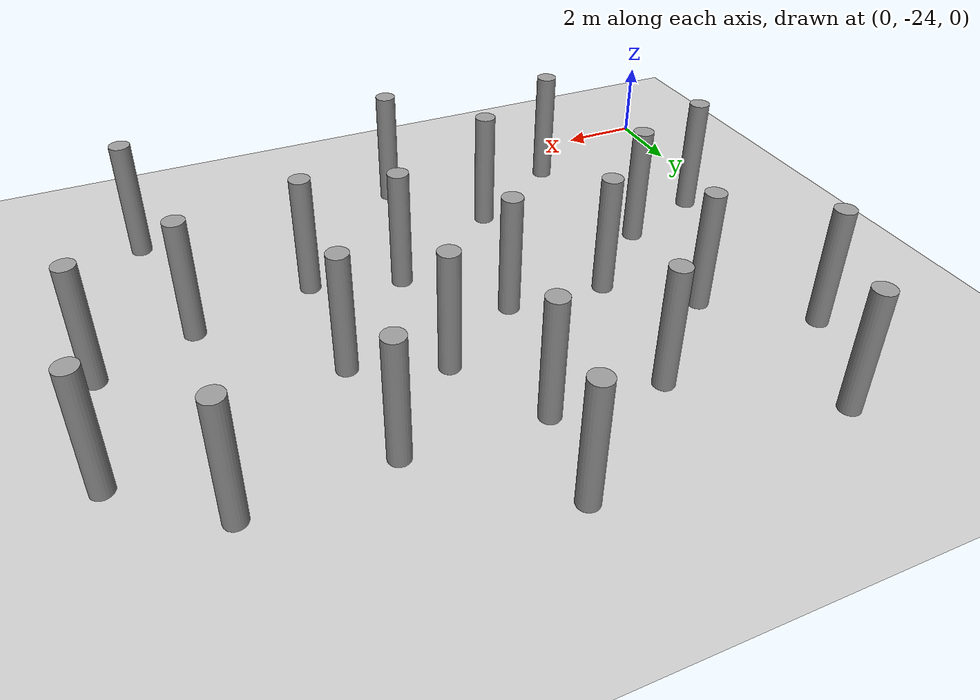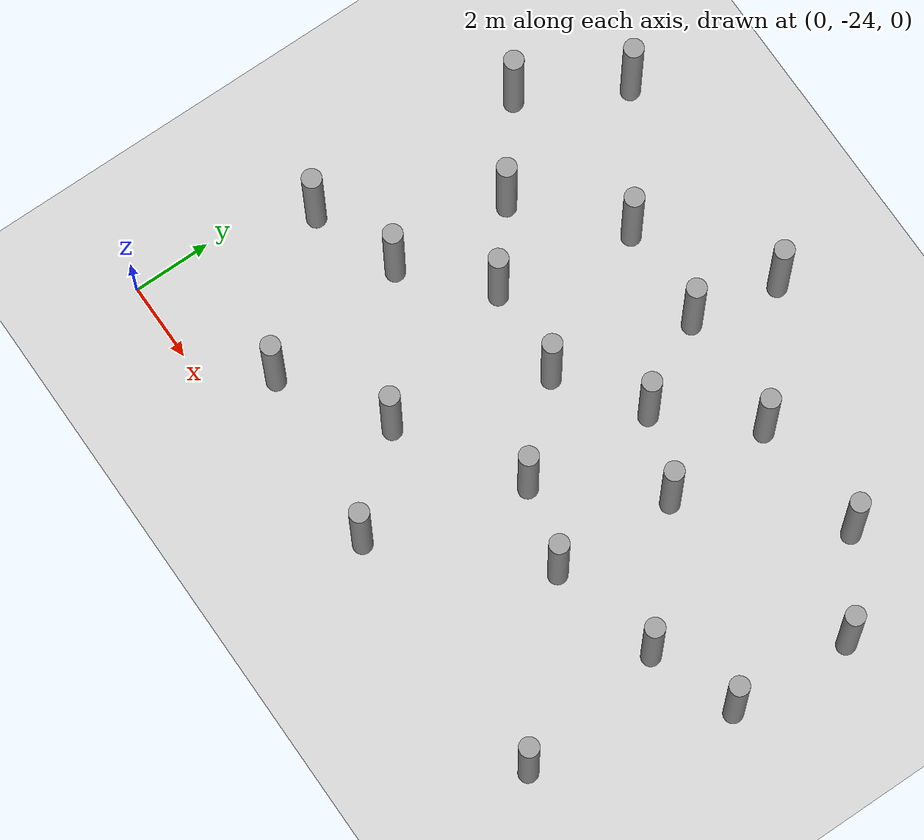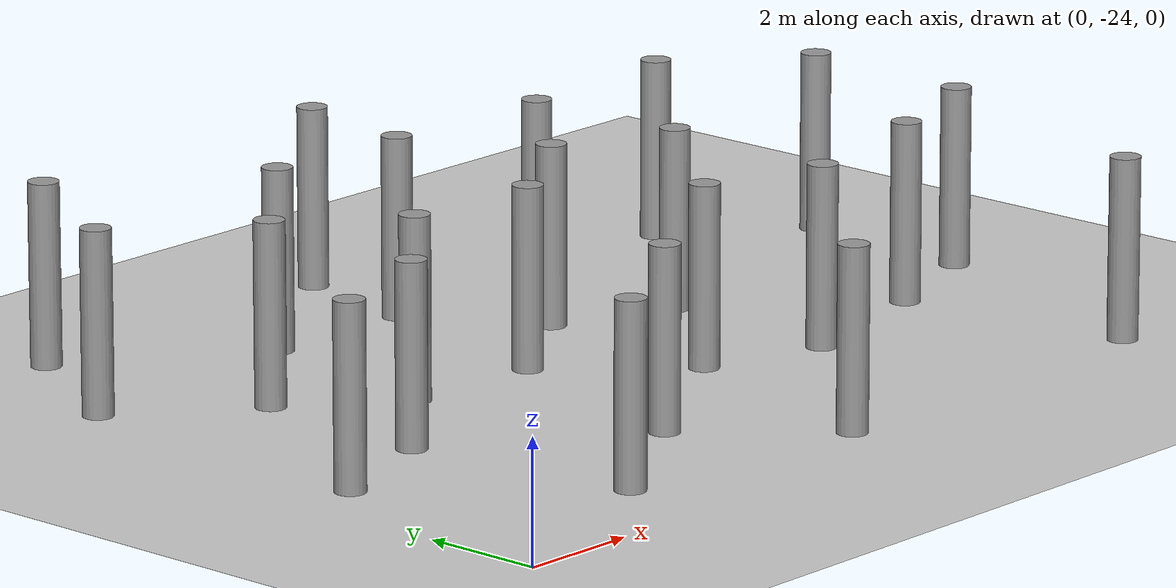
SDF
<sdf version="1.6">
 <world name="default">
  <model name="ground_plane">
   <static>1</static>
   <link name="link">
    <collision name="collision">
     <geometry><plane><normal>0 0 1</normal><size>100 100</size></plane></geometry>
     <surface><friction><ode><mu>100</mu><mu2>50</mu2></ode></friction></surface>
    </collision>
    <visual name="visual">
     <cast_shadows>0</cast_shadows>
     <geometry><plane><normal>0 0 1</normal><size>100 100</size></plane></geometry>
     <material>
      <script><uri>file://media/materials/scripts/gazebo.material</uri><name>Gazebo/Grey</name></script>
     </material>
    </visual>
   </link>
  </model>
  <model name="LjjForest">
   <link name="link_0_clone_20">
    <inertial>
     <mass>1</mass>
     <inertia><ixx>0.145833</ixx><ixy>0</ixy><ixz>0</ixz><iyy>0.145833</iyy><iyz>0</iyz><izz>0.125</izz></inertia>
    </inertial>
    <pose>1.97365 -10.0303 0 0 -0 0</pose>
    <visual name="visual">
     <geometry><cylinder><radius>0.25</radius><length>3</length></cylinder></geometry>
     <material>
      <lighting>1</lighting>
      <script><uri>file://media/materials/scripts/gazebo.material</uri><name>Gazebo/Grey</name></script>
      <shader type="vertex"><normal_map>__default__</normal_map></shader>
      <ambient>0.3 0.3 0.3 1</ambient>
      <diffuse>0.7 0.7 0.7 1</diffuse>
      <specular>0.01 0.01 0.01 1</specular>
      <emissive>0 0 0 1</emissive>
     </material>
    </visual>
    <collision name="collision">
     <geometry><cylinder><radius>0.25</radius><length>3</length></cylinder></geometry>
     <surface>
      <friction>
       <ode><mu>1</mu><mu2>1</mu2><fdir1>0 0 0</fdir1><slip1>0</slip1><slip2>0</slip2></ode>
       <torsional>
        <coefficient>1</coefficient>
        <patch_radius>0</patch_radius>
        <surface_radius>0</surface_radius>
        <use_patch_radius>1</use_patch_radius>
        <ode><slip>0</slip></ode>
       </torsional>
      </friction>
      <bounce><restitution_coefficient>0</restitution_coefficient><threshold>1e+06</threshold></bounce>
      <contact>
       <collide_without_contact>0</collide_without_contact>
       <collide_without_contact_bitmask>1</collide_without_contact_bitmask>
       <collide_bitmask>1</collide_bitmask>
       <ode>
        <soft_cfm>0</soft_cfm>
        <soft_erp>0.2</soft_erp>
        <kp>1e+13</kp>
        <kd>1</kd>
        <max_vel>0.01</max_vel>
        <min_depth>0</min_depth>
       </ode>
       <bullet>
        <split_impulse>1</split_impulse>
        <split_impulse_penetration_threshold>-0.01</split_impulse_penetration_threshold>
        <soft_cfm>0</soft_cfm>
        <soft_erp>0.2</soft_erp>
        <kp>1e+13</kp>
        <kd>1</kd>
       </bullet>
      </contact>
     </surface>
    </collision>
   </link>
   <link name="link_0_clone_21">
    <inertial>
     <mass>1</mass>
     <inertia><ixx>0.145833</ixx><ixy>0</ixy><ixz>0</ixz><iyy>0.145833</iyy><iyz>0</iyz><izz>0.125</izz></inertia>
    </inertial>
    <pose>-4.11405 -10.0375 0 0 -0 0</pose>
    <visual name="visual">
     <geometry><cylinder><radius>0.25</radius><length>3</length></cylinder></geometry>
     <material>
      <lighting>1</lighting>
      <script><uri>file://media/materials/scripts/gazebo.material</uri><name>Gazebo/Grey</name></script>
      <shader type="vertex"><normal_map>__default__</normal_map></shader>
      <ambient>0.3 0.3 0.3 1</ambient>
      <diffuse>0.7 0.7 0.7 1</diffuse>
      <specular>0.01 0.01 0.01 1</specular>
      <emissive>0 0 0 1</emissive>
     </material>
    </visual>
    <collision name="collision">
     <geometry><cylinder><radius>0.25</radius><length>3</length></cylinder></geometry>
     <surface>
      <friction>
       <ode><mu>1</mu><mu2>1</mu2><fdir1>0 0 0</fdir1><slip1>0</slip1><slip2>0</slip2></ode>
       <torsional>
        <coefficient>1</coefficient>
        <patch_radius>0</patch_radius>
        <surface_radius>0</surface_radius>
        <use_patch_radius>1</use_patch_radius>
        <ode><slip>0</slip></ode>
       </torsional>
      </friction>
      <bounce><restitution_coefficient>0</restitution_coefficient><threshold>1e+06</threshold></bounce>
      <contact>
       <collide_without_contact>0</collide_without_contact>
       <collide_without_contact_bitmask>1</collide_without_contact_bitmask>
       <collide_bitmask>1</collide_bitmask>
       <ode>
        <soft_cfm>0</soft_cfm>
        <soft_erp>0.2</soft_erp>
        <kp>1e+13</kp>
        <kd>1</kd>
        <max_vel>0.01</max_vel>
        <min_depth>0</min_depth>
       </ode>
       <bullet>
        <split_impulse>1</split_impulse>
        <split_impulse_penetration_threshold>-0.01</split_impulse_penetration_threshold>
        <soft_cfm>0</soft_cfm>
        <soft_erp>0.2</soft_erp>
        <kp>1e+13</kp>
        <kd>1</kd>
       </bullet>
      </contact>
     </surface>
    </collision>
   </link>
   <static>0</static>
   <pose>6.66629 -1.33639 1.49999 0 -0 0.002431</pose>
  </model>
  <model name="LjjForest_0">
   <link name="link_0_clone">
    <inertial>
     <mass>1</mass>
     <inertia><ixx>0.145833</ixx><ixy>0</ixy><ixz>0</ixz><iyy>0.145833</iyy><iyz>0</iyz><izz>0.125</izz></inertia>
    </inertial>
    <pose>-2.83119 0.981911 0 0 -0 0</pose>
    <visual name="visual">
     <geometry><cylinder><radius>0.25</radius><length>3</length></cylinder></geometry>
     <material>
      <lighting>1</lighting>
      <script><uri>file://media/materials/scripts/gazebo.material</uri><name>Gazebo/Grey</name></script>
      <shader type="vertex"><normal_map>__default__</normal_map></shader>
      <ambient>0.3 0.3 0.3 1</ambient>
      <diffuse>0.7 0.7 0.7 1</diffuse>
      <specular>0.01 0.01 0.01 1</specular>
      <emissive>0 0 0 1</emissive>
     </material>
    </visual>
    <collision name="collision">
     <geometry><cylinder><radius>0.25</radius><length>3</length></cylinder></geometry>
     <surface>
      <friction>
       <ode><mu>1</mu><mu2>1</mu2><fdir1>0 0 0</fdir1><slip1>0</slip1><slip2>0</slip2></ode>
       <torsional>
        <coefficient>1</coefficient>
        <patch_radius>0</patch_radius>
        <surface_radius>0</surface_radius>
        <use_patch_radius>1</use_patch_radius>
        <ode><slip>0</slip></ode>
       </torsional>
      </friction>
      <bounce><restitution_coefficient>0</restitution_coefficient><threshold>1e+06</threshold></bounce>
      <contact>
       <collide_without_contact>0</collide_without_contact>
       <collide_without_contact_bitmask>1</collide_without_contact_bitmask>
       <collide_bitmask>1</collide_bitmask>
       <ode>
        <soft_cfm>0</soft_cfm>
        <soft_erp>0.2</soft_erp>
        <kp>1e+13</kp>
        <kd>1</kd>
        <max_vel>0.01</max_vel>
        <min_depth>0</min_depth>
       </ode>
       <bullet>
        <split_impulse>1</split_impulse>
        <split_impulse_penetration_threshold>-0.01</split_impulse_penetration_threshold>
        <soft_cfm>0</soft_cfm>
        <soft_erp>0.2</soft_erp>
        <kp>1e+13</kp>
        <kd>1</kd>
       </bullet>
      </contact>
     </surface>
    </collision>
   </link>
   <link name="link_0_clone_0">
    <inertial>
     <mass>1</mass>
     <inertia><ixx>0.145833</ixx><ixy>0</ixy><ixz>0</ixz><iyy>0.145833</iyy><iyz>0</iyz><izz>0.125</izz></inertia>
    </inertial>
    <pose>-0.25253 2.5682 0 0 -0 0</pose>
    <visual name="visual">
     <geometry><cylinder><radius>0.25</radius><length>3</length></cylinder></geometry>
     <material>
      <lighting>1</lighting>
      <script><uri>file://media/materials/scripts/gazebo.material</uri><name>Gazebo/Grey</name></script>
      <shader type="vertex"><normal_map>__default__</normal_map></shader>
      <ambient>0.3 0.3 0.3 1</ambient>
      <diffuse>0.7 0.7 0.7 1</diffuse>
      <specular>0.01 0.01 0.01 1</specular>
      <emissive>0 0 0 1</emissive>
     </material>
    </visual>
    <collision name="collision">
     <geometry><cylinder><radius>0.25</radius><length>3</length></cylinder></geometry>
     <surface>
      <friction>
       <ode><mu>1</mu><mu2>1</mu2><fdir1>0 0 0</fdir1><slip1>0</slip1><slip2>0</slip2></ode>
       <torsional>
        <coefficient>1</coefficient>
        <patch_radius>0</patch_radius>
        <surface_radius>0</surface_radius>
        <use_patch_radius>1</use_patch_radius>
        <ode><slip>0</slip></ode>
       </torsional>
      </friction>
      <bounce><restitution_coefficient>0</restitution_coefficient><threshold>1e+06</threshold></bounce>
      <contact>
       <collide_without_contact>0</collide_without_contact>
       <collide_without_contact_bitmask>1</collide_without_contact_bitmask>
       <collide_bitmask>1</collide_bitmask>
       <ode>
        <soft_cfm>0</soft_cfm>
        <soft_erp>0.2</soft_erp>
        <kp>1e+13</kp>
        <kd>1</kd>
        <max_vel>0.01</max_vel>
        <min_depth>0</min_depth>
       </ode>
       <bullet>
        <split_impulse>1</split_impulse>
        <split_impulse_penetration_threshold>-0.01</split_impulse_penetration_threshold>
        <soft_cfm>0</soft_cfm>
        <soft_erp>0.2</soft_erp>
        <kp>1e+13</kp>
        <kd>1</kd>
       </bullet>
      </contact>
     </surface>
    </collision>
   </link>
   <link name="link_0_clone_2">
    <inertial>
     <mass>1</mass>
     <inertia><ixx>0.145833</ixx><ixy>0</ixy><ixz>0</ixz><iyy>0.145833</iyy><iyz>0</iyz><izz>0.125</izz></inertia>
    </inertial>
    <pose>1.64727 0.418921 0 0 -0 0</pose>
    <visual name="visual">
     <geometry><cylinder><radius>0.25</radius><length>3</length></cylinder></geometry>
     <material>
      <lighting>1</lighting>
      <script><uri>file://media/materials/scripts/gazebo.material</uri><name>Gazebo/Grey</name></script>
      <shader type="vertex"><normal_map>__default__</normal_map></shader>
      <ambient>0.3 0.3 0.3 1</ambient>
      <diffuse>0.7 0.7 0.7 1</diffuse>
      <specular>0.01 0.01 0.01 1</specular>
      <emissive>0 0 0 1</emissive>
     </material>
    </visual>
    <collision name="collision">
     <geometry><cylinder><radius>0.25</radius><length>3</length></cylinder></geometry>
     <surface>
      <friction>
       <ode><mu>1</mu><mu2>1</mu2><fdir1>0 0 0</fdir1><slip1>0</slip1><slip2>0</slip2></ode>
       <torsional>
        <coefficient>1</coefficient>
        <patch_radius>0</patch_radius>
        <surface_radius>0</surface_radius>
        <use_patch_radius>1</use_patch_radius>
        <ode><slip>0</slip></ode>
       </torsional>
      </friction>
      <bounce><restitution_coefficient>0</restitution_coefficient><threshold>1e+06</threshold></bounce>
      <contact>
       <collide_without_contact>0</collide_without_contact>
       <collide_without_contact_bitmask>1</collide_without_contact_bitmask>
       <collide_bitmask>1</collide_bitmask>
       <ode>
        <soft_cfm>0</soft_cfm>
        <soft_erp>0.2</soft_erp>
        <kp>1e+13</kp>
        <kd>1</kd>
        <max_vel>0.01</max_vel>
        <min_depth>0</min_depth>
       </ode>
       <bullet>
        <split_impulse>1</split_impulse>
        <split_impulse_penetration_threshold>-0.01</split_impulse_penetration_threshold>
        <soft_cfm>0</soft_cfm>
        <soft_erp>0.2</soft_erp>
        <kp>1e+13</kp>
        <kd>1</kd>
       </bullet>
      </contact>
     </surface>
    </collision>
   </link>
   <link name="link_0_clone_23">
    <inertial>
     <mass>1</mass>
     <inertia><ixx>0.145833</ixx><ixy>0</ixy><ixz>0</ixz><iyy>0.145833</iyy><iyz>0</iyz><izz>0.125</izz></inertia>
    </inertial>
    <pose>-5.66615 4.05911 0 0 -0 0</pose>
    <visual name="visual">
     <geometry><cylinder><radius>0.25</radius><length>3</length></cylinder></geometry>
     <material>
      <lighting>1</lighting>
      <script><uri>file://media/materials/scripts/gazebo.material</uri><name>Gazebo/Grey</name></script>
      <shader type="vertex"><normal_map>__default__</normal_map></shader>
      <ambient>0.3 0.3 0.3 1</ambient>
      <diffuse>0.7 0.7 0.7 1</diffuse>
      <specular>0.01 0.01 0.01 1</specular>
      <emissive>0 0 0 1</emissive>
     </material>
    </visual>
    <collision name="collision">
     <geometry><cylinder><radius>0.25</radius><length>3</length></cylinder></geometry>
     <surface>
      <friction>
       <ode><mu>1</mu><mu2>1</mu2><fdir1>0 0 0</fdir1><slip1>0</slip1><slip2>0</slip2></ode>
       <torsional>
        <coefficient>1</coefficient>
        <patch_radius>0</patch_radius>
        <surface_radius>0</surface_radius>
        <use_patch_radius>1</use_patch_radius>
        <ode><slip>0</slip></ode>
       </torsional>
      </friction>
      <bounce><restitution_coefficient>0</restitution_coefficient><threshold>1e+06</threshold></bounce>
      <contact>
       <collide_without_contact>0</collide_without_contact>
       <collide_without_contact_bitmask>1</collide_without_contact_bitmask>
       <collide_bitmask>1</collide_bitmask>
       <ode>
        <soft_cfm>0</soft_cfm>
        <soft_erp>0.2</soft_erp>
        <kp>1e+13</kp>
        <kd>1</kd>
        <max_vel>0.01</max_vel>
        <min_depth>0</min_depth>
       </ode>
       <bullet>
        <split_impulse>1</split_impulse>
        <split_impulse_penetration_threshold>-0.01</split_impulse_penetration_threshold>
        <soft_cfm>0</soft_cfm>
        <soft_erp>0.2</soft_erp>
        <kp>1e+13</kp>
        <kd>1</kd>
       </bullet>
      </contact>
     </surface>
    </collision>
   </link>
   <link name="link_0_clone_24">
    <inertial>
     <mass>1</mass>
     <inertia><ixx>0.145833</ixx><ixy>0</ixy><ixz>0</ixz><iyy>0.145833</iyy><iyz>0</iyz><izz>0.125</izz></inertia>
    </inertial>
    <pose>2.92874 7.75131 0 0 -0 0</pose>
    <visual name="visual">
     <geometry><cylinder><radius>0.25</radius><length>3</length></cylinder></geometry>
     <material>
      <lighting>1</lighting>
      <script><uri>file://media/materials/scripts/gazebo.material</uri><name>Gazebo/Grey</name></script>
      <shader type="vertex"><normal_map>__default__</normal_map></shader>
      <ambient>0.3 0.3 0.3 1</ambient>
      <diffuse>0.7 0.7 0.7 1</diffuse>
      <specular>0.01 0.01 0.01 1</specular>
      <emissive>0 0 0 1</emissive>
     </material>
    </visual>
    <collision name="collision">
     <geometry><cylinder><radius>0.25</radius><length>3</length></cylinder></geometry>
     <surface>
      <friction>
       <ode><mu>1</mu><mu2>1</mu2><fdir1>0 0 0</fdir1><slip1>0</slip1><slip2>0</slip2></ode>
       <torsional>
        <coefficient>1</coefficient>
        <patch_radius>0</patch_radius>
        <surface_radius>0</surface_radius>
        <use_patch_radius>1</use_patch_radius>
        <ode><slip>0</slip></ode>
       </torsional>
      </friction>
      <bounce><restitution_coefficient>0</restitution_coefficient><threshold>1e+06</threshold></bounce>
      <contact>
       <collide_without_contact>0</collide_without_contact>
       <collide_without_contact_bitmask>1</collide_without_contact_bitmask>
       <collide_bitmask>1</collide_bitmask>
       <ode>
        <soft_cfm>0</soft_cfm>
        <soft_erp>0.2</soft_erp>
        <kp>1e+13</kp>
        <kd>1</kd>
        <max_vel>0.01</max_vel>
        <min_depth>0</min_depth>
       </ode>
       <bullet>
        <split_impulse>1</split_impulse>
        <split_impulse_penetration_threshold>-0.01</split_impulse_penetration_threshold>
        <soft_cfm>0</soft_cfm>
        <soft_erp>0.2</soft_erp>
        <kp>1e+13</kp>
        <kd>1</kd>
       </bullet>
      </contact>
     </surface>
    </collision>
   </link>
   <link name="link_0_clone_25">
    <inertial>
     <mass>1</mass>
     <inertia><ixx>0.145833</ixx><ixy>0</ixy><ixz>0</ixz><iyy>0.145833</iyy><iyz>0</iyz><izz>0.125</izz></inertia>
    </inertial>
    <pose>4.82479 9.76951 0 0 -0 0</pose>
    <visual name="visual">
     <geometry><cylinder><radius>0.25</radius><length>3</length></cylinder></geometry>
     <material>
      <lighting>1</lighting>
      <script><uri>file://media/materials/scripts/gazebo.material</uri><name>Gazebo/Grey</name></script>
      <shader type="vertex"><normal_map>__default__</normal_map></shader>
      <ambient>0.3 0.3 0.3 1</ambient>
      <diffuse>0.7 0.7 0.7 1</diffuse>
      <specular>0.01 0.01 0.01 1</specular>
      <emissive>0 0 0 1</emissive>
     </material>
    </visual>
    <collision name="collision">
     <geometry><cylinder><radius>0.25</radius><length>3</length></cylinder></geometry>
     <surface>
      <friction>
       <ode><mu>1</mu><mu2>1</mu2><fdir1>0 0 0</fdir1><slip1>0</slip1><slip2>0</slip2></ode>
       <torsional>
        <coefficient>1</coefficient>
        <patch_radius>0</patch_radius>
        <surface_radius>0</surface_radius>
        <use_patch_radius>1</use_patch_radius>
        <ode><slip>0</slip></ode>
       </torsional>
      </friction>
      <bounce><restitution_coefficient>0</restitution_coefficient><threshold>1e+06</threshold></bounce>
      <contact>
       <collide_without_contact>0</collide_without_contact>
       <collide_without_contact_bitmask>1</collide_without_contact_bitmask>
       <collide_bitmask>1</collide_bitmask>
       <ode>
        <soft_cfm>0</soft_cfm>
        <soft_erp>0.2</soft_erp>
        <kp>1e+13</kp>
        <kd>1</kd>
        <max_vel>0.01</max_vel>
        <min_depth>0</min_depth>
       </ode>
       <bullet>
        <split_impulse>1</split_impulse>
        <split_impulse_penetration_threshold>-0.01</split_impulse_penetration_threshold>
        <soft_cfm>0</soft_cfm>
        <soft_erp>0.2</soft_erp>
        <kp>1e+13</kp>
        <kd>1</kd>
       </bullet>
      </contact>
     </surface>
    </collision>
   </link>
   <link name="link_0_clone_26">
    <inertial>
     <mass>1</mass>
     <inertia><ixx>0.145833</ixx><ixy>0</ixy><ixz>0</ixz><iyy>0.145833</iyy><iyz>0</iyz><izz>0.125</izz></inertia>
    </inertial>
    <pose>1.66794 9.91533 0 0 -0 0</pose>
    <visual name="visual">
     <geometry><cylinder><radius>0.25</radius><length>3</length></cylinder></geometry>
     <material>
      <lighting>1</lighting>
      <script><uri>file://media/materials/scripts/gazebo.material</uri><name>Gazebo/Grey</name></script>
      <shader type="vertex"><normal_map>__default__</normal_map></shader>
      <ambient>0.3 0.3 0.3 1</ambient>
      <diffuse>0.7 0.7 0.7 1</diffuse>
      <specular>0.01 0.01 0.01 1</specular>
      <emissive>0 0 0 1</emissive>
     </material>
    </visual>
    <collision name="collision">
     <geometry><cylinder><radius>0.25</radius><length>3</length></cylinder></geometry>
     <surface>
      <friction>
       <ode><mu>1</mu><mu2>1</mu2><fdir1>0 0 0</fdir1><slip1>0</slip1><slip2>0</slip2></ode>
       <torsional>
        <coefficient>1</coefficient>
        <patch_radius>0</patch_radius>
        <surface_radius>0</surface_radius>
        <use_patch_radius>1</use_patch_radius>
        <ode><slip>0</slip></ode>
       </torsional>
      </friction>
      <bounce><restitution_coefficient>0</restitution_coefficient><threshold>1e+06</threshold></bounce>
      <contact>
       <collide_without_contact>0</collide_without_contact>
       <collide_without_contact_bitmask>1</collide_without_contact_bitmask>
       <collide_bitmask>1</collide_bitmask>
       <ode>
        <soft_cfm>0</soft_cfm>
        <soft_erp>0.2</soft_erp>
        <kp>1e+13</kp>
        <kd>1</kd>
        <max_vel>0.01</max_vel>
        <min_depth>0</min_depth>
       </ode>
       <bullet>
        <split_impulse>1</split_impulse>
        <split_impulse_penetration_threshold>-0.01</split_impulse_penetration_threshold>
        <soft_cfm>0</soft_cfm>
        <soft_erp>0.2</soft_erp>
        <kp>1e+13</kp>
        <kd>1</kd>
       </bullet>
      </contact>
     </surface>
    </collision>
   </link>
   <link name="link_0_clone_27">
    <inertial>
     <mass>1</mass>
     <inertia><ixx>0.145833</ixx><ixy>0</ixy><ixz>0</ixz><iyy>0.145833</iyy><iyz>0</iyz><izz>0.125</izz></inertia>
    </inertial>
    <pose>-0.975859 10.0087 0 0 -0 0</pose>
    <visual name="visual">
     <geometry><cylinder><radius>0.25</radius><length>3</length></cylinder></geometry>
     <material>
      <lighting>1</lighting>
      <script><uri>file://media/materials/scripts/gazebo.material</uri><name>Gazebo/Grey</name></script>
      <shader type="vertex"><normal_map>__default__</normal_map></shader>
      <ambient>0.3 0.3 0.3 1</ambient>
      <diffuse>0.7 0.7 0.7 1</diffuse>
      <specular>0.01 0.01 0.01 1</specular>
      <emissive>0 0 0 1</emissive>
     </material>
    </visual>
    <collision name="collision">
     <geometry><cylinder><radius>0.25</radius><length>3</length></cylinder></geometry>
     <surface>
      <friction>
       <ode><mu>1</mu><mu2>1</mu2><fdir1>0 0 0</fdir1><slip1>0</slip1><slip2>0</slip2></ode>
       <torsional>
        <coefficient>1</coefficient>
        <patch_radius>0</patch_radius>
        <surface_radius>0</surface_radius>
        <use_patch_radius>1</use_patch_radius>
        <ode><slip>0</slip></ode>
       </torsional>
      </friction>
      <bounce><restitution_coefficient>0</restitution_coefficient><threshold>1e+06</threshold></bounce>
      <contact>
       <collide_without_contact>0</collide_without_contact>
       <collide_without_contact_bitmask>1</collide_without_contact_bitmask>
       <collide_bitmask>1</collide_bitmask>
       <ode>
        <soft_cfm>0</soft_cfm>
        <soft_erp>0.2</soft_erp>
        <kp>1e+13</kp>
        <kd>1</kd>
        <max_vel>0.01</max_vel>
        <min_depth>0</min_depth>
       </ode>
       <bullet>
        <split_impulse>1</split_impulse>
        <split_impulse_penetration_threshold>-0.01</split_impulse_penetration_threshold>
        <soft_cfm>0</soft_cfm>
        <soft_erp>0.2</soft_erp>
        <kp>1e+13</kp>
        <kd>1</kd>
       </bullet>
      </contact>
     </surface>
    </collision>
   </link>
   <link name="link_0_clone_28">
    <inertial>
     <mass>1</mass>
     <inertia><ixx>0.145833</ixx><ixy>0</ixy><ixz>0</ixz><iyy>0.145833</iyy><iyz>0</iyz><izz>0.125</izz></inertia>
    </inertial>
    <pose>-3.28832 7.97521 0 0 -0 0</pose>
    <visual name="visual">
     <geometry><cylinder><radius>0.25</radius><length>3</length></cylinder></geometry>
     <material>
      <lighting>1</lighting>
      <script><uri>file://media/materials/scripts/gazebo.material</uri><name>Gazebo/Grey</name></script>
      <shader type="vertex"><normal_map>__default__</normal_map></shader>
      <ambient>0.3 0.3 0.3 1</ambient>
      <diffuse>0.7 0.7 0.7 1</diffuse>
      <specular>0.01 0.01 0.01 1</specular>
      <emissive>0 0 0 1</emissive>
     </material>
    </visual>
    <collision name="collision">
     <geometry><cylinder><radius>0.25</radius><length>3</length></cylinder></geometry>
     <surface>
      <friction>
       <ode><mu>1</mu><mu2>1</mu2><fdir1>0 0 0</fdir1><slip1>0</slip1><slip2>0</slip2></ode>
       <torsional>
        <coefficient>1</coefficient>
        <patch_radius>0</patch_radius>
        <surface_radius>0</surface_radius>
        <use_patch_radius>1</use_patch_radius>
        <ode><slip>0</slip></ode>
       </torsional>
      </friction>
      <bounce><restitution_coefficient>0</restitution_coefficient><threshold>1e+06</threshold></bounce>
      <contact>
       <collide_without_contact>0</collide_without_contact>
       <collide_without_contact_bitmask>1</collide_without_contact_bitmask>
       <collide_bitmask>1</collide_bitmask>
       <ode>
        <soft_cfm>0</soft_cfm>
        <soft_erp>0.2</soft_erp>
        <kp>1e+13</kp>
        <kd>1</kd>
        <max_vel>0.01</max_vel>
        <min_depth>0</min_depth>
       </ode>
       <bullet>
        <split_impulse>1</split_impulse>
        <split_impulse_penetration_threshold>-0.01</split_impulse_penetration_threshold>
        <soft_cfm>0</soft_cfm>
        <soft_erp>0.2</soft_erp>
        <kp>1e+13</kp>
        <kd>1</kd>
       </bullet>
      </contact>
     </surface>
    </collision>
   </link>
   <link name="link_0_clone_29">
    <inertial>
     <mass>1</mass>
     <inertia><ixx>0.145833</ixx><ixy>0</ixy><ixz>0</ixz><iyy>0.145833</iyy><iyz>0</iyz><izz>0.125</izz></inertia>
    </inertial>
    <pose>-5.38645 9.63545 0 0 -0 0</pose>
    <visual name="visual">
     <geometry><cylinder><radius>0.25</radius><length>3</length></cylinder></geometry>
     <material>
      <lighting>1</lighting>
      <script><uri>file://media/materials/scripts/gazebo.material</uri><name>Gazebo/Grey</name></script>
      <shader type="vertex"><normal_map>__default__</normal_map></shader>
      <ambient>0.3 0.3 0.3 1</ambient>
      <diffuse>0.7 0.7 0.7 1</diffuse>
      <specular>0.01 0.01 0.01 1</specular>
      <emissive>0 0 0 1</emissive>
     </material>
    </visual>
    <collision name="collision">
     <geometry><cylinder><radius>0.25</radius><length>3</length></cylinder></geometry>
     <surface>
      <friction>
       <ode><mu>1</mu><mu2>1</mu2><fdir1>0 0 0</fdir1><slip1>0</slip1><slip2>0</slip2></ode>
       <torsional>
        <coefficient>1</coefficient>
        <patch_radius>0</patch_radius>
        <surface_radius>0</surface_radius>
        <use_patch_radius>1</use_patch_radius>
        <ode><slip>0</slip></ode>
       </torsional>
      </friction>
      <bounce><restitution_coefficient>0</restitution_coefficient><threshold>1e+06</threshold></bounce>
      <contact>
       <collide_without_contact>0</collide_without_contact>
       <collide_without_contact_bitmask>1</collide_without_contact_bitmask>
       <collide_bitmask>1</collide_bitmask>
       <ode>
        <soft_cfm>0</soft_cfm>
        <soft_erp>0.2</soft_erp>
        <kp>1e+13</kp>
        <kd>1</kd>
        <max_vel>0.01</max_vel>
        <min_depth>0</min_depth>
       </ode>
       <bullet>
        <split_impulse>1</split_impulse>
        <split_impulse_penetration_threshold>-0.01</split_impulse_penetration_threshold>
        <soft_cfm>0</soft_cfm>
        <soft_erp>0.2</soft_erp>
        <kp>1e+13</kp>
        <kd>1</kd>
       </bullet>
      </contact>
     </surface>
    </collision>
   </link>
   <link name="link_0_clone_3">
    <inertial>
     <mass>1</mass>
     <inertia><ixx>0.145833</ixx><ixy>0</ixy><ixz>0</ixz><iyy>0.145833</iyy><iyz>0</iyz><izz>0.125</izz></inertia>
    </inertial>
    <pose>2.76214 4.38882 0 0 -0 0</pose>
    <visual name="visual">
     <geometry><cylinder><radius>0.25</radius><length>3</length></cylinder></geometry>
     <material>
      <lighting>1</lighting>
      <script><uri>file://media/materials/scripts/gazebo.material</uri><name>Gazebo/Grey</name></script>
      <shader type="vertex"><normal_map>__default__</normal_map></shader>
      <ambient>0.3 0.3 0.3 1</ambient>
      <diffuse>0.7 0.7 0.7 1</diffuse>
      <specular>0.01 0.01 0.01 1</specular>
      <emissive>0 0 0 1</emissive>
     </material>
    </visual>
    <collision name="collision">
     <geometry><cylinder><radius>0.25</radius><length>3</length></cylinder></geometry>
     <surface>
      <friction>
       <ode><mu>1</mu><mu2>1</mu2><fdir1>0 0 0</fdir1><slip1>0</slip1><slip2>0</slip2></ode>
       <torsional>
        <coefficient>1</coefficient>
        <patch_radius>0</patch_radius>
        <surface_radius>0</surface_radius>
        <use_patch_radius>1</use_patch_radius>
        <ode><slip>0</slip></ode>
       </torsional>
      </friction>
      <bounce><restitution_coefficient>0</restitution_coefficient><threshold>1e+06</threshold></bounce>
      <contact>
       <collide_without_contact>0</collide_without_contact>
       <collide_without_contact_bitmask>1</collide_without_contact_bitmask>
       <collide_bitmask>1</collide_bitmask>
       <ode>
        <soft_cfm>0</soft_cfm>
        <soft_erp>0.2</soft_erp>
        <kp>1e+13</kp>
        <kd>1</kd>
        <max_vel>0.01</max_vel>
        <min_depth>0</min_depth>
       </ode>
       <bullet>
        <split_impulse>1</split_impulse>
        <split_impulse_penetration_threshold>-0.01</split_impulse_penetration_threshold>
        <soft_cfm>0</soft_cfm>
        <soft_erp>0.2</soft_erp>
        <kp>1e+13</kp>
        <kd>1</kd>
       </bullet>
      </contact>
     </surface>
    </collision>
   </link>
   <link name="link_0_clone_30">
    <inertial>
     <mass>1</mass>
     <inertia><ixx>0.145833</ixx><ixy>0</ixy><ixz>0</ixz><iyy>0.145833</iyy><iyz>0</iyz><izz>0.125</izz></inertia>
    </inertial>
    <pose>4.96935 6.93626 0 0 -0 0</pose>
    <visual name="visual">
     <geometry><cylinder><radius>0.25</radius><length>3</length></cylinder></geometry>
     <material>
      <lighting>1</lighting>
      <script><uri>file://media/materials/scripts/gazebo.material</uri><name>Gazebo/Grey</name></script>
      <shader type="vertex"><normal_map>__default__</normal_map></shader>
      <ambient>0.3 0.3 0.3 1</ambient>
      <diffuse>0.7 0.7 0.7 1</diffuse>
      <specular>0.01 0.01 0.01 1</specular>
      <emissive>0 0 0 1</emissive>
     </material>
    </visual>
    <collision name="collision">
     <geometry><cylinder><radius>0.25</radius><length>3</length></cylinder></geometry>
     <surface>
      <friction>
       <ode><mu>1</mu><mu2>1</mu2><fdir1>0 0 0</fdir1><slip1>0</slip1><slip2>0</slip2></ode>
       <torsional>
        <coefficient>1</coefficient>
        <patch_radius>0</patch_radius>
        <surface_radius>0</surface_radius>
        <use_patch_radius>1</use_patch_radius>
        <ode><slip>0</slip></ode>
       </torsional>
      </friction>
      <bounce><restitution_coefficient>0</restitution_coefficient><threshold>1e+06</threshold></bounce>
      <contact>
       <collide_without_contact>0</collide_without_contact>
       <collide_without_contact_bitmask>1</collide_without_contact_bitmask>
       <collide_bitmask>1</collide_bitmask>
       <ode>
        <soft_cfm>0</soft_cfm>
        <soft_erp>0.2</soft_erp>
        <kp>1e+13</kp>
        <kd>1</kd>
        <max_vel>0.01</max_vel>
        <min_depth>0</min_depth>
       </ode>
       <bullet>
        <split_impulse>1</split_impulse>
        <split_impulse_penetration_threshold>-0.01</split_impulse_penetration_threshold>
        <soft_cfm>0</soft_cfm>
        <soft_erp>0.2</soft_erp>
        <kp>1e+13</kp>
        <kd>1</kd>
       </bullet>
      </contact>
     </surface>
    </collision>
   </link>
   <link name="link_0_clone_31">
    <inertial>
     <mass>1</mass>
     <inertia><ixx>0.145833</ixx><ixy>0</ixy><ixz>0</ixz><iyy>0.145833</iyy><iyz>0</iyz><izz>0.125</izz></inertia>
    </inertial>
    <pose>4.87388 3.77106 0 0 -0 0</pose>
    <visual name="visual">
     <geometry><cylinder><radius>0.25</radius><length>3</length></cylinder></geometry>
     <material>
      <lighting>1</lighting>
      <script><uri>file://media/materials/scripts/gazebo.material</uri><name>Gazebo/Grey</name></script>
      <shader type="vertex"><normal_map>__default__</normal_map></shader>
      <ambient>0.3 0.3 0.3 1</ambient>
      <diffuse>0.7 0.7 0.7 1</diffuse>
      <specular>0.01 0.01 0.01 1</specular>
      <emissive>0 0 0 1</emissive>
     </material>
    </visual>
    <collision name="collision">
     <geometry><cylinder><radius>0.25</radius><length>3</length></cylinder></geometry>
     <surface>
      <friction>
       <ode><mu>1</mu><mu2>1</mu2><fdir1>0 0 0</fdir1><slip1>0</slip1><slip2>0</slip2></ode>
       <torsional>
        <coefficient>1</coefficient>
        <patch_radius>0</patch_radius>
        <surface_radius>0</surface_radius>
        <use_patch_radius>1</use_patch_radius>
        <ode><slip>0</slip></ode>
       </torsional>
      </friction>
      <bounce><restitution_coefficient>0</restitution_coefficient><threshold>1e+06</threshold></bounce>
      <contact>
       <collide_without_contact>0</collide_without_contact>
       <collide_without_contact_bitmask>1</collide_without_contact_bitmask>
       <collide_bitmask>1</collide_bitmask>
       <ode>
        <soft_cfm>0</soft_cfm>
        <soft_erp>0.2</soft_erp>
        <kp>1e+13</kp>
        <kd>1</kd>
        <max_vel>0.01</max_vel>
        <min_depth>0</min_depth>
       </ode>
       <bullet>
        <split_impulse>1</split_impulse>
        <split_impulse_penetration_threshold>-0.01</split_impulse_penetration_threshold>
        <soft_cfm>0</soft_cfm>
        <soft_erp>0.2</soft_erp>
        <kp>1e+13</kp>
        <kd>1</kd>
       </bullet>
      </contact>
     </surface>
    </collision>
   </link>
   <link name="link_0_clone_4">
    <inertial>
     <mass>1</mass>
     <inertia><ixx>0.145833</ixx><ixy>0</ixy><ixz>0</ixz><iyy>0.145833</iyy><iyz>0</iyz><izz>0.125</izz></inertia>
    </inertial>
    <pose>0.858928 6.3824 0 0 -0 0</pose>
    <visual name="visual">
     <geometry><cylinder><radius>0.25</radius><length>3</length></cylinder></geometry>
     <material>
      <lighting>1</lighting>
      <script><uri>file://media/materials/scripts/gazebo.material</uri><name>Gazebo/Grey</name></script>
      <shader type="vertex"><normal_map>__default__</normal_map></shader>
      <ambient>0.3 0.3 0.3 1</ambient>
      <diffuse>0.7 0.7 0.7 1</diffuse>
      <specular>0.01 0.01 0.01 1</specular>
      <emissive>0 0 0 1</emissive>
     </material>
    </visual>
    <collision name="collision">
     <geometry><cylinder><radius>0.25</radius><length>3</length></cylinder></geometry>
     <surface>
      <friction>
       <ode><mu>1</mu><mu2>1</mu2><fdir1>0 0 0</fdir1><slip1>0</slip1><slip2>0</slip2></ode>
       <torsional>
        <coefficient>1</coefficient>
        <patch_radius>0</patch_radius>
        <surface_radius>0</surface_radius>
        <use_patch_radius>1</use_patch_radius>
        <ode><slip>0</slip></ode>
       </torsional>
      </friction>
      <bounce><restitution_coefficient>0</restitution_coefficient><threshold>1e+06</threshold></bounce>
      <contact>
       <collide_without_contact>0</collide_without_contact>
       <collide_without_contact_bitmask>1</collide_without_contact_bitmask>
       <collide_bitmask>1</collide_bitmask>
       <ode>
        <soft_cfm>0</soft_cfm>
        <soft_erp>0.2</soft_erp>
        <kp>1e+13</kp>
        <kd>1</kd>
        <max_vel>0.01</max_vel>
        <min_depth>0</min_depth>
       </ode>
       <bullet>
        <split_impulse>1</split_impulse>
        <split_impulse_penetration_threshold>-0.01</split_impulse_penetration_threshold>
        <soft_cfm>0</soft_cfm>
        <soft_erp>0.2</soft_erp>
        <kp>1e+13</kp>
        <kd>1</kd>
       </bullet>
      </contact>
     </surface>
    </collision>
   </link>
   <link name="link_0_clone_5">
    <inertial>
     <mass>1</mass>
     <inertia><ixx>0.145833</ixx><ixy>0</ixy><ixz>0</ixz><iyy>0.145833</iyy><iyz>0</iyz><izz>0.125</izz></inertia>
    </inertial>
    <pose>-1.56065 6.53618 0 0 -0 0</pose>
    <visual name="visual">
     <geometry><cylinder><radius>0.25</radius><length>3</length></cylinder></geometry>
     <material>
      <lighting>1</lighting>
      <script><uri>file://media/materials/scripts/gazebo.material</uri><name>Gazebo/Grey</name></script>
      <shader type="vertex"><normal_map>__default__</normal_map></shader>
      <ambient>0.3 0.3 0.3 1</ambient>
      <diffuse>0.7 0.7 0.7 1</diffuse>
      <specular>0.01 0.01 0.01 1</specular>
      <emissive>0 0 0 1</emissive>
     </material>
    </visual>
    <collision name="collision">
     <geometry><cylinder><radius>0.25</radius><length>3</length></cylinder></geometry>
     <surface>
      <friction>
       <ode><mu>1</mu><mu2>1</mu2><fdir1>0 0 0</fdir1><slip1>0</slip1><slip2>0</slip2></ode>
       <torsional>
        <coefficient>1</coefficient>
        <patch_radius>0</patch_radius>
        <surface_radius>0</surface_radius>
        <use_patch_radius>1</use_patch_radius>
        <ode><slip>0</slip></ode>
       </torsional>
      </friction>
      <bounce><restitution_coefficient>0</restitution_coefficient><threshold>1e+06</threshold></bounce>
      <contact>
       <collide_without_contact>0</collide_without_contact>
       <collide_without_contact_bitmask>1</collide_without_contact_bitmask>
       <collide_bitmask>1</collide_bitmask>
       <ode>
        <soft_cfm>0</soft_cfm>
        <soft_erp>0.2</soft_erp>
        <kp>1e+13</kp>
        <kd>1</kd>
        <max_vel>0.01</max_vel>
        <min_depth>0</min_depth>
       </ode>
       <bullet>
        <split_impulse>1</split_impulse>
        <split_impulse_penetration_threshold>-0.01</split_impulse_penetration_threshold>
        <soft_cfm>0</soft_cfm>
        <soft_erp>0.2</soft_erp>
        <kp>1e+13</kp>
        <kd>1</kd>
       </bullet>
      </contact>
     </surface>
    </collision>
   </link>
   <link name="link_0_clone_6">
    <inertial>
     <mass>1</mass>
     <inertia><ixx>0.145833</ixx><ixy>0</ixy><ixz>0</ixz><iyy>0.145833</iyy><iyz>0</iyz><izz>0.125</izz></inertia>
    </inertial>
    <pose>-3.46215 4.85006 0 0 -0 0</pose>
    <visual name="visual">
     <geometry><cylinder><radius>0.25</radius><length>3</length></cylinder></geometry>
     <material>
      <lighting>1</lighting>
      <script><uri>file://media/materials/scripts/gazebo.material</uri><name>Gazebo/Grey</name></script>
      <shader type="vertex"><normal_map>__default__</normal_map></shader>
      <ambient>0.3 0.3 0.3 1</ambient>
      <diffuse>0.7 0.7 0.7 1</diffuse>
      <specular>0.01 0.01 0.01 1</specular>
      <emissive>0 0 0 1</emissive>
     </material>
    </visual>
    <collision name="collision">
     <geometry><cylinder><radius>0.25</radius><length>3</length></cylinder></geometry>
     <surface>
      <friction>
       <ode><mu>1</mu><mu2>1</mu2><fdir1>0 0 0</fdir1><slip1>0</slip1><slip2>0</slip2></ode>
       <torsional>
        <coefficient>1</coefficient>
        <patch_radius>0</patch_radius>
        <surface_radius>0</surface_radius>
        <use_patch_radius>1</use_patch_radius>
        <ode><slip>0</slip></ode>
       </torsional>
      </friction>
      <bounce><restitution_coefficient>0</restitution_coefficient><threshold>1e+06</threshold></bounce>
      <contact>
       <collide_without_contact>0</collide_without_contact>
       <collide_without_contact_bitmask>1</collide_without_contact_bitmask>
       <collide_bitmask>1</collide_bitmask>
       <ode>
        <soft_cfm>0</soft_cfm>
        <soft_erp>0.2</soft_erp>
        <kp>1e+13</kp>
        <kd>1</kd>
        <max_vel>0.01</max_vel>
        <min_depth>0</min_depth>
       </ode>
       <bullet>
        <split_impulse>1</split_impulse>
        <split_impulse_penetration_threshold>-0.01</split_impulse_penetration_threshold>
        <soft_cfm>0</soft_cfm>
        <soft_erp>0.2</soft_erp>
        <kp>1e+13</kp>
        <kd>1</kd>
       </bullet>
      </contact>
     </surface>
    </collision>
   </link>
   <static>0</static>
   <pose>6.62019 -23.5094 1.5 0 -0 0.002394</pose>
  </model>
  <model name="LjjForest_4">
   <link name="link_0">
    <inertial>
     <mass>1</mass>
     <inertia><ixx>0.145833</ixx><ixy>0</ixy><ixz>0</ixz><iyy>0.145833</iyy><iyz>0</iyz><izz>0.125</izz></inertia>
    </inertial>
    <pose>-5.02717 0.116957 0 0 -0 0</pose>
    <visual name="visual">
     <geometry><cylinder><radius>0.25</radius><length>3</length></cylinder></geometry>
     <material>
      <lighting>1</lighting>
      <script><uri>file://media/materials/scripts/gazebo.material</uri><name>Gazebo/Grey</name></script>
      <shader type="vertex"><normal_map>__default__</normal_map></shader>
      <ambient>0.3 0.3 0.3 1</ambient>
      <diffuse>0.7 0.7 0.7 1</diffuse>
      <specular>0.01 0.01 0.01 1</specular>
      <emissive>0 0 0 1</emissive>
     </material>
    </visual>
    <collision name="collision">
     <geometry><cylinder><radius>0.25</radius><length>3</length></cylinder></geometry>
     <surface>
      <friction>
       <ode><mu>1</mu><mu2>1</mu2><fdir1>0 0 0</fdir1><slip1>0</slip1><slip2>0</slip2></ode>
       <torsional>
        <coefficient>1</coefficient>
        <patch_radius>0</patch_radius>
        <surface_radius>0</surface_radius>
        <use_patch_radius>1</use_patch_radius>
        <ode><slip>0</slip></ode>
       </torsional>
      </friction>
      <bounce><restitution_coefficient>0</restitution_coefficient><threshold>1e+06</threshold></bounce>
      <contact>
       <collide_without_contact>0</collide_without_contact>
       <collide_without_contact_bitmask>1</collide_without_contact_bitmask>
       <collide_bitmask>1</collide_bitmask>
       <ode>
        <soft_cfm>0</soft_cfm>
        <soft_erp>0.2</soft_erp>
        <kp>1e+13</kp>
        <kd>1</kd>
        <max_vel>0.01</max_vel>
        <min_depth>0</min_depth>
       </ode>
       <bullet>
        <split_impulse>1</split_impulse>
        <split_impulse_penetration_threshold>-0.01</split_impulse_penetration_threshold>
        <soft_cfm>0</soft_cfm>
        <soft_erp>0.2</soft_erp>
        <kp>1e+13</kp>
        <kd>1</kd>
       </bullet>
      </contact>
     </surface>
    </collision>
   </link>
   <link name="link_0_clone_23">
    <inertial>
     <mass>1</mass>
     <inertia><ixx>0.145833</ixx><ixy>0</ixy><ixz>0</ixz><iyy>0.145833</iyy><iyz>0</iyz><izz>0.125</izz></inertia>
    </inertial>
    <pose>-5.66615 4.05911 0 0 -0 0</pose>
    <visual name="visual">
     <geometry><cylinder><radius>0.25</radius><length>3</length></cylinder></geometry>
     <material>
      <lighting>1</lighting>
      <script><uri>file://media/materials/scripts/gazebo.material</uri><name>Gazebo/Grey</name></script>
      <shader type="vertex"><normal_map>__default__</normal_map></shader>
      <ambient>0.3 0.3 0.3 1</ambient>
      <diffuse>0.7 0.7 0.7 1</diffuse>
      <specular>0.01 0.01 0.01 1</specular>
      <emissive>0 0 0 1</emissive>
     </material>
    </visual>
    <collision name="collision">
     <geometry><cylinder><radius>0.25</radius><length>3</length></cylinder></geometry>
     <surface>
      <friction>
       <ode><mu>1</mu><mu2>1</mu2><fdir1>0 0 0</fdir1><slip1>0</slip1><slip2>0</slip2></ode>
       <torsional>
        <coefficient>1</coefficient>
        <patch_radius>0</patch_radius>
        <surface_radius>0</surface_radius>
        <use_patch_radius>1</use_patch_radius>
        <ode><slip>0</slip></ode>
       </torsional>
      </friction>
      <bounce><restitution_coefficient>0</restitution_coefficient><threshold>1e+06</threshold></bounce>
      <contact>
       <collide_without_contact>0</collide_without_contact>
       <collide_without_contact_bitmask>1</collide_without_contact_bitmask>
       <collide_bitmask>1</collide_bitmask>
       <ode>
        <soft_cfm>0</soft_cfm>
        <soft_erp>0.2</soft_erp>
        <kp>1e+13</kp>
        <kd>1</kd>
        <max_vel>0.01</max_vel>
        <min_depth>0</min_depth>
       </ode>
       <bullet>
        <split_impulse>1</split_impulse>
        <split_impulse_penetration_threshold>-0.01</split_impulse_penetration_threshold>
        <soft_cfm>0</soft_cfm>
        <soft_erp>0.2</soft_erp>
        <kp>1e+13</kp>
        <kd>1</kd>
       </bullet>
      </contact>
     </surface>
    </collision>
   </link>
   <link name="link_0_clone_28">
    <inertial>
     <mass>1</mass>
     <inertia><ixx>0.145833</ixx><ixy>0</ixy><ixz>0</ixz><iyy>0.145833</iyy><iyz>0</iyz><izz>0.125</izz></inertia>
    </inertial>
    <pose>-3.28832 7.97521 0 0 -0 0</pose>
    <visual name="visual">
     <geometry><cylinder><radius>0.25</radius><length>3</length></cylinder></geometry>
     <material>
      <lighting>1</lighting>
      <script><uri>file://media/materials/scripts/gazebo.material</uri><name>Gazebo/Grey</name></script>
      <shader type="vertex"><normal_map>__default__</normal_map></shader>
      <ambient>0.3 0.3 0.3 1</ambient>
      <diffuse>0.7 0.7 0.7 1</diffuse>
      <specular>0.01 0.01 0.01 1</specular>
      <emissive>0 0 0 1</emissive>
     </material>
    </visual>
    <collision name="collision">
     <geometry><cylinder><radius>0.25</radius><length>3</length></cylinder></geometry>
     <surface>
      <friction>
       <ode><mu>1</mu><mu2>1</mu2><fdir1>0 0 0</fdir1><slip1>0</slip1><slip2>0</slip2></ode>
       <torsional>
        <coefficient>1</coefficient>
        <patch_radius>0</patch_radius>
        <surface_radius>0</surface_radius>
        <use_patch_radius>1</use_patch_radius>
        <ode><slip>0</slip></ode>
       </torsional>
      </friction>
      <bounce><restitution_coefficient>0</restitution_coefficient><threshold>1e+06</threshold></bounce>
      <contact>
       <collide_without_contact>0</collide_without_contact>
       <collide_without_contact_bitmask>1</collide_without_contact_bitmask>
       <collide_bitmask>1</collide_bitmask>
       <ode>
        <soft_cfm>0</soft_cfm>
        <soft_erp>0.2</soft_erp>
        <kp>1e+13</kp>
        <kd>1</kd>
        <max_vel>0.01</max_vel>
        <min_depth>0</min_depth>
       </ode>
       <bullet>
        <split_impulse>1</split_impulse>
        <split_impulse_penetration_threshold>-0.01</split_impulse_penetration_threshold>
        <soft_cfm>0</soft_cfm>
        <soft_erp>0.2</soft_erp>
        <kp>1e+13</kp>
        <kd>1</kd>
       </bullet>
      </contact>
     </surface>
    </collision>
   </link>
   <link name="link_0_clone_29">
    <inertial>
     <mass>1</mass>
     <inertia><ixx>0.145833</ixx><ixy>0</ixy><ixz>0</ixz><iyy>0.145833</iyy><iyz>0</iyz><izz>0.125</izz></inertia>
    </inertial>
    <pose>-5.38645 9.63545 0 0 -0 0</pose>
    <visual name="visual">
     <geometry><cylinder><radius>0.25</radius><length>3</length></cylinder></geometry>
     <material>
      <lighting>1</lighting>
      <script><uri>file://media/materials/scripts/gazebo.material</uri><name>Gazebo/Grey</name></script>
      <shader type="vertex"><normal_map>__default__</normal_map></shader>
      <ambient>0.3 0.3 0.3 1</ambient>
      <diffuse>0.7 0.7 0.7 1</diffuse>
      <specular>0.01 0.01 0.01 1</specular>
      <emissive>0 0 0 1</emissive>
     </material>
    </visual>
    <collision name="collision">
     <geometry><cylinder><radius>0.25</radius><length>3</length></cylinder></geometry>
     <surface>
      <friction>
       <ode><mu>1</mu><mu2>1</mu2><fdir1>0 0 0</fdir1><slip1>0</slip1><slip2>0</slip2></ode>
       <torsional>
        <coefficient>1</coefficient>
        <patch_radius>0</patch_radius>
        <surface_radius>0</surface_radius>
        <use_patch_radius>1</use_patch_radius>
        <ode><slip>0</slip></ode>
       </torsional>
      </friction>
      <bounce><restitution_coefficient>0</restitution_coefficient><threshold>1e+06</threshold></bounce>
      <contact>
       <collide_without_contact>0</collide_without_contact>
       <collide_without_contact_bitmask>1</collide_without_contact_bitmask>
       <collide_bitmask>1</collide_bitmask>
       <ode>
        <soft_cfm>0</soft_cfm>
        <soft_erp>0.2</soft_erp>
        <kp>1e+13</kp>
        <kd>1</kd>
        <max_vel>0.01</max_vel>
        <min_depth>0</min_depth>
       </ode>
       <bullet>
        <split_impulse>1</split_impulse>
        <split_impulse_penetration_threshold>-0.01</split_impulse_penetration_threshold>
        <soft_cfm>0</soft_cfm>
        <soft_erp>0.2</soft_erp>
        <kp>1e+13</kp>
        <kd>1</kd>
       </bullet>
      </contact>
     </surface>
    </collision>
   </link>
   <link name="link_0_clone_6">
    <inertial>
     <mass>1</mass>
     <inertia><ixx>0.145833</ixx><ixy>0</ixy><ixz>0</ixz><iyy>0.145833</iyy><iyz>0</iyz><izz>0.125</izz></inertia>
    </inertial>
    <pose>-3.46215 4.85006 0 0 -0 0</pose>
    <visual name="visual">
     <geometry><cylinder><radius>0.25</radius><length>3</length></cylinder></geometry>
     <material>
      <lighting>1</lighting>
      <script><uri>file://media/materials/scripts/gazebo.material</uri><name>Gazebo/Grey</name></script>
      <shader type="vertex"><normal_map>__default__</normal_map></shader>
      <ambient>0.3 0.3 0.3 1</ambient>
      <diffuse>0.7 0.7 0.7 1</diffuse>
      <specular>0.01 0.01 0.01 1</specular>
      <emissive>0 0 0 1</emissive>
     </material>
    </visual>
    <collision name="collision">
     <geometry><cylinder><radius>0.25</radius><length>3</length></cylinder></geometry>
     <surface>
      <friction>
       <ode><mu>1</mu><mu2>1</mu2><fdir1>0 0 0</fdir1><slip1>0</slip1><slip2>0</slip2></ode>
       <torsional>
        <coefficient>1</coefficient>
        <patch_radius>0</patch_radius>
        <surface_radius>0</surface_radius>
        <use_patch_radius>1</use_patch_radius>
        <ode><slip>0</slip></ode>
       </torsional>
      </friction>
      <bounce><restitution_coefficient>0</restitution_coefficient><threshold>1e+06</threshold></bounce>
      <contact>
       <collide_without_contact>0</collide_without_contact>
       <collide_without_contact_bitmask>1</collide_without_contact_bitmask>
       <collide_bitmask>1</collide_bitmask>
       <ode>
        <soft_cfm>0</soft_cfm>
        <soft_erp>0.2</soft_erp>
        <kp>1e+13</kp>
        <kd>1</kd>
        <max_vel>0.01</max_vel>
        <min_depth>0</min_depth>
       </ode>
       <bullet>
        <split_impulse>1</split_impulse>
        <split_impulse_penetration_threshold>-0.01</split_impulse_penetration_threshold>
        <soft_cfm>0</soft_cfm>
        <soft_erp>0.2</soft_erp>
        <kp>1e+13</kp>
        <kd>1</kd>
       </bullet>
      </contact>
     </surface>
    </collision>
   </link>
   <static>0</static>
   <pose>20.0127 -23.0998 1.49999 0 -0 0.002232</pose>
  </model>
 </world>
</sdf>
